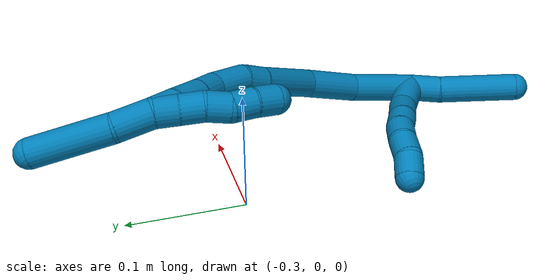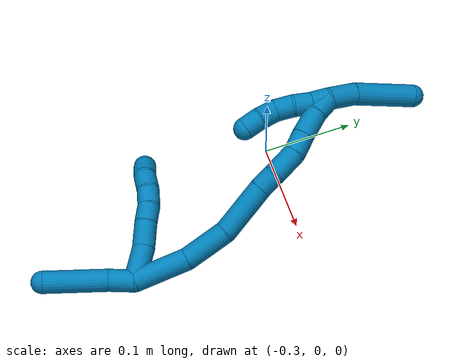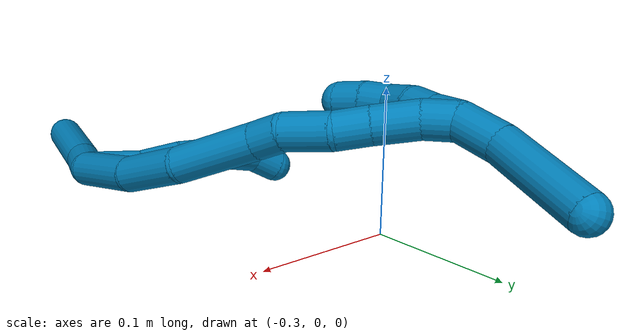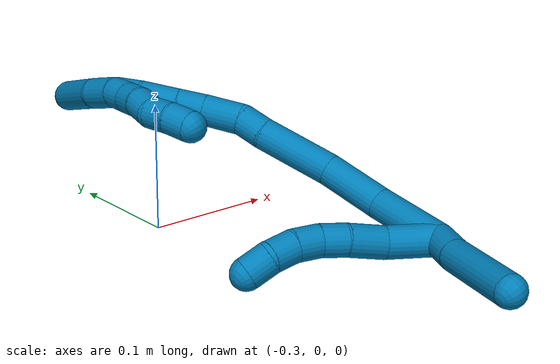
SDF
<sdf version="1.7">
 <world name="default">
  <model name="9">
   <static>0</static>
   <link name="9">
    <collision name="collision-cylinder-e_1_2_8">
     <pose>-0.000835 0.012218 0.015902 -0.655111 -0.041617 0.014143</pose>
     <geometry><cylinder><radius>0.0125</radius><length>0.040142</length></cylinder></geometry>
     <surface>
      <friction><ode><mu>1.16</mu><mu2>1.16</mu2><slip1>0</slip1><slip2>0</slip2></ode></friction>
      <contact><ode><kp>1e+06</kp><kd>1</kd><max_vel>0</max_vel><min_depth>0.001</min_depth></ode></contact>
     </surface>
    </collision>
    <visual name="visual-cylinder-e_1_2_8">
     <pose>-0.000835 0.012218 0.015902 -0.655111 -0.041617 0.014143</pose>
     <geometry><cylinder><radius>0.0125</radius><length>0.040142</length></cylinder></geometry>
     <material><ambient>0 0.490196 0.709804 1</ambient></material>
    </visual>
    <collision name="collision-cylinder-e_2_8_9">
     <pose>0.001024 0.033314 0.043217 -0.661144 0.184246 -0.063385</pose>
     <geometry><cylinder><radius>0.0125</radius><length>0.029416</length></cylinder></geometry>
     <surface>
      <friction><ode><mu>1.16</mu><mu2>1.16</mu2><slip1>0</slip1><slip2>0</slip2></ode></friction>
      <contact><ode><kp>1e+06</kp><kd>1</kd><max_vel>0</max_vel><min_depth>0.001</min_depth></ode></contact>
     </surface>
    </collision>
    <visual name="visual-cylinder-e_2_8_9">
     <pose>0.001024 0.033314 0.043217 -0.661144 0.184246 -0.063385</pose>
     <geometry><cylinder><radius>0.0125</radius><length>0.029416</length></cylinder></geometry>
     <material><ambient>0 0.490196 0.709804 1</ambient></material>
    </visual>
    <collision name="collision-cylinder-e_3_9_10">
     <pose>0.004186 0.04817 0.062646 -0.640743 0.046642 -0.015478</pose>
     <geometry><cylinder><radius>0.0125</radius><length>0.020022</length></cylinder></geometry>
     <surface>
      <friction><ode><mu>1.16</mu><mu2>1.16</mu2><slip1>0</slip1><slip2>0</slip2></ode></friction>
      <contact><ode><kp>1e+06</kp><kd>1</kd><max_vel>0</max_vel><min_depth>0.001</min_depth></ode></contact>
     </surface>
    </collision>
    <visual name="visual-cylinder-e_3_9_10">
     <pose>0.004186 0.04817 0.062646 -0.640743 0.046642 -0.015478</pose>
     <geometry><cylinder><radius>0.0125</radius><length>0.020022</length></cylinder></geometry>
     <material><ambient>0 0.490196 0.709804 1</ambient></material>
    </visual>
    <collision name="collision-cylinder-e_4_10_11">
     <pose>0.005762 0.058209 0.079808 -0.41794 0.110422 -0.02344</pose>
     <geometry><cylinder><radius>0.0125</radius><length>0.020135</length></cylinder></geometry>
     <surface>
      <friction><ode><mu>1.16</mu><mu2>1.16</mu2><slip1>0</slip1><slip2>0</slip2></ode></friction>
      <contact><ode><kp>1e+06</kp><kd>1</kd><max_vel>0</max_vel><min_depth>0.001</min_depth></ode></contact>
     </surface>
    </collision>
    <visual name="visual-cylinder-e_4_10_11">
     <pose>0.005762 0.058209 0.079808 -0.41794 0.110422 -0.02344</pose>
     <geometry><cylinder><radius>0.0125</radius><length>0.020135</length></cylinder></geometry>
     <material><ambient>0 0.490196 0.709804 1</ambient></material>
    </visual>
    <collision name="collision-cylinder-e_5_11_12">
     <pose>0.007376 0.064192 0.098865 -0.191435 0.049886 -0.004791</pose>
     <geometry><cylinder><radius>0.0125</radius><length>0.020219</length></cylinder></geometry>
     <surface>
      <friction><ode><mu>1.16</mu><mu2>1.16</mu2><slip1>0</slip1><slip2>0</slip2></ode></friction>
      <contact><ode><kp>1e+06</kp><kd>1</kd><max_vel>0</max_vel><min_depth>0.001</min_depth></ode></contact>
     </surface>
    </collision>
    <visual name="visual-cylinder-e_5_11_12">
     <pose>0.007376 0.064192 0.098865 -0.191435 0.049886 -0.004791</pose>
     <geometry><cylinder><radius>0.0125</radius><length>0.020219</length></cylinder></geometry>
     <material><ambient>0 0.490196 0.709804 1</ambient></material>
    </visual>
    <collision name="collision-cylinder-e_6_12_6">
     <pose>0.005241 0.06746 0.118363 -0.139618 -0.266155 0.01872</pose>
     <geometry><cylinder><radius>0.0125</radius><length>0.020065</length></cylinder></geometry>
     <surface>
      <friction><ode><mu>1.16</mu><mu2>1.16</mu2><slip1>0</slip1><slip2>0</slip2></ode></friction>
      <contact><ode><kp>1e+06</kp><kd>1</kd><max_vel>0</max_vel><min_depth>0.001</min_depth></ode></contact>
     </surface>
    </collision>
    <visual name="visual-cylinder-e_6_12_6">
     <pose>0.005241 0.06746 0.118363 -0.139618 -0.266155 0.01872</pose>
     <geometry><cylinder><radius>0.0125</radius><length>0.020065</length></cylinder></geometry>
     <material><ambient>0 0.490196 0.709804 1</ambient></material>
    </visual>
    <collision name="collision-cylinder-e_1_2_13">
     <pose>0.008677 -0.010007 0.005094 1.09996 0.657862 0.41257</pose>
     <geometry><cylinder><radius>0.0125</radius><length>0.028381</length></cylinder></geometry>
     <surface>
      <friction><ode><mu>1.16</mu><mu2>1.16</mu2><slip1>0</slip1><slip2>0</slip2></ode></friction>
      <contact><ode><kp>1e+06</kp><kd>1</kd><max_vel>0</max_vel><min_depth>0.001</min_depth></ode></contact>
     </surface>
    </collision>
    <visual name="visual-cylinder-e_1_2_13">
     <pose>0.008677 -0.010007 0.005094 1.09996 0.657862 0.41257</pose>
     <geometry><cylinder><radius>0.0125</radius><length>0.028381</length></cylinder></geometry>
     <material><ambient>0 0.490196 0.709804 1</ambient></material>
    </visual>
    <collision name="collision-cylinder-e_2_13_5">
     <pose>0.04071 -0.04564 0.019137 1.2348 0.710559 0.515145</pose>
     <geometry><cylinder><radius>0.0125</radius><length>0.071619</length></cylinder></geometry>
     <surface>
      <friction><ode><mu>1.16</mu><mu2>1.16</mu2><slip1>0</slip1><slip2>0</slip2></ode></friction>
      <contact><ode><kp>1e+06</kp><kd>1</kd><max_vel>0</max_vel><min_depth>0.001</min_depth></ode></contact>
     </surface>
    </collision>
    <visual name="visual-cylinder-e_2_13_5">
     <pose>0.04071 -0.04564 0.019137 1.2348 0.710559 0.515145</pose>
     <geometry><cylinder><radius>0.0125</radius><length>0.071619</length></cylinder></geometry>
     <material><ambient>0 0.490196 0.709804 1</ambient></material>
    </visual>
    <collision name="collision-cylinder-e_1_2_14">
     <pose>-0.012848 0.027734 -0.001302 -1.61772 -0.433387 0.453522</pose>
     <geometry><cylinder><radius>0.0125</radius><length>0.061187</length></cylinder></geometry>
     <surface>
      <friction><ode><mu>1.16</mu><mu2>1.16</mu2><slip1>0</slip1><slip2>0</slip2></ode></friction>
      <contact><ode><kp>1e+06</kp><kd>1</kd><max_vel>0</max_vel><min_depth>0.001</min_depth></ode></contact>
     </surface>
    </collision>
    <visual name="visual-cylinder-e_1_2_14">
     <pose>-0.012848 0.027734 -0.001302 -1.61772 -0.433387 0.453522</pose>
     <geometry><cylinder><radius>0.0125</radius><length>0.061187</length></cylinder></geometry>
     <material><ambient>0 0.490196 0.709804 1</ambient></material>
    </visual>
    <collision name="collision-cylinder-e_2_14_15">
     <pose>-0.031313 0.080306 -0.001098 -1.51022 -0.22206 0.209098</pose>
     <geometry><cylinder><radius>0.0125</radius><length>0.051019</length></cylinder></geometry>
     <surface>
      <friction><ode><mu>1.16</mu><mu2>1.16</mu2><slip1>0</slip1><slip2>0</slip2></ode></friction>
      <contact><ode><kp>1e+06</kp><kd>1</kd><max_vel>0</max_vel><min_depth>0.001</min_depth></ode></contact>
     </surface>
    </collision>
    <visual name="visual-cylinder-e_2_14_15">
     <pose>-0.031313 0.080306 -0.001098 -1.51022 -0.22206 0.209098</pose>
     <geometry><cylinder><radius>0.0125</radius><length>0.051019</length></cylinder></geometry>
     <material><ambient>0 0.490196 0.709804 1</ambient></material>
    </visual>
    <collision name="collision-cylinder-e_3_15_16">
     <pose>-0.038091 0.133962 0.008389 -1.30063 -0.038739 0.02947</pose>
     <geometry><cylinder><radius>0.0125</radius><length>0.059851</length></cylinder></geometry>
     <surface>
      <friction><ode><mu>1.16</mu><mu2>1.16</mu2><slip1>0</slip1><slip2>0</slip2></ode></friction>
      <contact><ode><kp>1e+06</kp><kd>1</kd><max_vel>0</max_vel><min_depth>0.001</min_depth></ode></contact>
     </surface>
    </collision>
    <visual name="visual-cylinder-e_3_15_16">
     <pose>-0.038091 0.133962 0.008389 -1.30063 -0.038739 0.02947</pose>
     <geometry><cylinder><radius>0.0125</radius><length>0.059851</length></cylinder></geometry>
     <material><ambient>0 0.490196 0.709804 1</ambient></material>
    </visual>
    <collision name="collision-cylinder-e_4_16_17">
     <pose>-0.040081 0.173024 0.017984 -1.41456 -0.080051 0.068439</pose>
     <geometry><cylinder><radius>0.0125</radius><length>0.020805</length></cylinder></geometry>
     <surface>
      <friction><ode><mu>1.16</mu><mu2>1.16</mu2><slip1>0</slip1><slip2>0</slip2></ode></friction>
      <contact><ode><kp>1e+06</kp><kd>1</kd><max_vel>0</max_vel><min_depth>0.001</min_depth></ode></contact>
     </surface>
    </collision>
    <visual name="visual-cylinder-e_4_16_17">
     <pose>-0.040081 0.173024 0.017984 -1.41456 -0.080051 0.068439</pose>
     <geometry><cylinder><radius>0.0125</radius><length>0.020805</length></cylinder></geometry>
     <material><ambient>0 0.490196 0.709804 1</ambient></material>
    </visual>
    <collision name="collision-cylinder-e_5_17_18">
     <pose>-0.045158 0.197741 0.025939 -1.15784 -0.262408 0.172082</pose>
     <geometry><cylinder><radius>0.0125</radius><length>0.032726</length></cylinder></geometry>
     <surface>
      <friction><ode><mu>1.16</mu><mu2>1.16</mu2><slip1>0</slip1><slip2>0</slip2></ode></friction>
      <contact><ode><kp>1e+06</kp><kd>1</kd><max_vel>0</max_vel><min_depth>0.001</min_depth></ode></contact>
     </surface>
    </collision>
    <visual name="visual-cylinder-e_5_17_18">
     <pose>-0.045158 0.197741 0.025939 -1.15784 -0.262408 0.172082</pose>
     <geometry><cylinder><radius>0.0125</radius><length>0.032726</length></cylinder></geometry>
     <material><ambient>0 0.490196 0.709804 1</ambient></material>
    </visual>
    <collision name="collision-cylinder-e_6_18_19">
     <pose>-0.049855 0.221522 0.038841 -0.956786 -0.039719 0.020599</pose>
     <geometry><cylinder><radius>0.0125</radius><length>0.02279</length></cylinder></geometry>
     <surface>
      <friction><ode><mu>1.16</mu><mu2>1.16</mu2><slip1>0</slip1><slip2>0</slip2></ode></friction>
      <contact><ode><kp>1e+06</kp><kd>1</kd><max_vel>0</max_vel><min_depth>0.001</min_depth></ode></contact>
     </surface>
    </collision>
    <visual name="visual-cylinder-e_6_18_19">
     <pose>-0.049855 0.221522 0.038841 -0.956786 -0.039719 0.020599</pose>
     <geometry><cylinder><radius>0.0125</radius><length>0.02279</length></cylinder></geometry>
     <material><ambient>0 0.490196 0.709804 1</ambient></material>
    </visual>
    <collision name="collision-cylinder-e_7_19_20">
     <pose>-0.051695 0.243345 0.053441 -0.999845 -0.093012 0.050829</pose>
     <geometry><cylinder><radius>0.0125</radius><length>0.029882</length></cylinder></geometry>
     <surface>
      <friction><ode><mu>1.16</mu><mu2>1.16</mu2><slip1>0</slip1><slip2>0</slip2></ode></friction>
      <contact><ode><kp>1e+06</kp><kd>1</kd><max_vel>0</max_vel><min_depth>0.001</min_depth></ode></contact>
     </surface>
    </collision>
    <visual name="visual-cylinder-e_7_19_20">
     <pose>-0.051695 0.243345 0.053441 -0.999845 -0.093012 0.050829</pose>
     <geometry><cylinder><radius>0.0125</radius><length>0.029882</length></cylinder></geometry>
     <material><ambient>0 0.490196 0.709804 1</ambient></material>
    </visual>
    <collision name="collision-cylinder-e_8_20_1">
     <pose>-0.056339 0.264941 0.066493 -1.06632 -0.304199 0.180434</pose>
     <geometry><cylinder><radius>0.0125</radius><length>0.02174</length></cylinder></geometry>
     <surface>
      <friction><ode><mu>1.16</mu><mu2>1.16</mu2><slip1>0</slip1><slip2>0</slip2></ode></friction>
      <contact><ode><kp>1e+06</kp><kd>1</kd><max_vel>0</max_vel><min_depth>0.001</min_depth></ode></contact>
     </surface>
    </collision>
    <visual name="visual-cylinder-e_8_20_1">
     <pose>-0.056339 0.264941 0.066493 -1.06632 -0.304199 0.180434</pose>
     <geometry><cylinder><radius>0.0125</radius><length>0.02174</length></cylinder></geometry>
     <material><ambient>0 0.490196 0.709804 1</ambient></material>
    </visual>
    <collision name="collision-cylinder-e_1_1_21">
     <pose>-0.053798 0.265881 0.071912 1.52092 0.618319 0.589979</pose>
     <geometry><cylinder><radius>0.0125</radius><length>0.02</length></cylinder></geometry>
     <surface>
      <friction><ode><mu>1.16</mu><mu2>1.16</mu2><slip1>0</slip1><slip2>0</slip2></ode></friction>
      <contact><ode><kp>1e+06</kp><kd>1</kd><max_vel>0</max_vel><min_depth>0.001</min_depth></ode></contact>
     </surface>
    </collision>
    <visual name="visual-cylinder-e_1_1_21">
     <pose>-0.053798 0.265881 0.071912 1.52092 0.618319 0.589979</pose>
     <geometry><cylinder><radius>0.0125</radius><length>0.02</length></cylinder></geometry>
     <material><ambient>0 0.490196 0.709804 1</ambient></material>
    </visual>
    <collision name="collision-cylinder-e_2_21_22">
     <pose>-0.041478 0.250241 0.073397 1.42811 0.710674 0.622282</pose>
     <geometry><cylinder><radius>0.0125</radius><length>0.02</length></cylinder></geometry>
     <surface>
      <friction><ode><mu>1.16</mu><mu2>1.16</mu2><slip1>0</slip1><slip2>0</slip2></ode></friction>
      <contact><ode><kp>1e+06</kp><kd>1</kd><max_vel>0</max_vel><min_depth>0.001</min_depth></ode></contact>
     </surface>
    </collision>
    <visual name="visual-cylinder-e_2_21_22">
     <pose>-0.041478 0.250241 0.073397 1.42811 0.710674 0.622282</pose>
     <geometry><cylinder><radius>0.0125</radius><length>0.02</length></cylinder></geometry>
     <material><ambient>0 0.490196 0.709804 1</ambient></material>
    </visual>
    <collision name="collision-cylinder-e_3_22_23">
     <pose>-0.0302 0.234118 0.076231 1.36982 0.495439 0.407435</pose>
     <geometry><cylinder><radius>0.0125</radius><length>0.02</length></cylinder></geometry>
     <surface>
      <friction><ode><mu>1.16</mu><mu2>1.16</mu2><slip1>0</slip1><slip2>0</slip2></ode></friction>
      <contact><ode><kp>1e+06</kp><kd>1</kd><max_vel>0</max_vel><min_depth>0.001</min_depth></ode></contact>
     </surface>
    </collision>
    <visual name="visual-cylinder-e_3_22_23">
     <pose>-0.0302 0.234118 0.076231 1.36982 0.495439 0.407435</pose>
     <geometry><cylinder><radius>0.0125</radius><length>0.02</length></cylinder></geometry>
     <material><ambient>0 0.490196 0.709804 1</ambient></material>
    </visual>
    <collision name="collision-cylinder-e_4_23_24">
     <pose>-0.020672 0.216867 0.076337 1.75972 0.497712 0.596312</pose>
     <geometry><cylinder><radius>0.0125</radius><length>0.02</length></cylinder></geometry>
     <surface>
      <friction><ode><mu>1.16</mu><mu2>1.16</mu2><slip1>0</slip1><slip2>0</slip2></ode></friction>
      <contact><ode><kp>1e+06</kp><kd>1</kd><max_vel>0</max_vel><min_depth>0.001</min_depth></ode></contact>
     </surface>
    </collision>
    <visual name="visual-cylinder-e_4_23_24">
     <pose>-0.020672 0.216867 0.076337 1.75972 0.497712 0.596312</pose>
     <geometry><cylinder><radius>0.0125</radius><length>0.02</length></cylinder></geometry>
     <material><ambient>0 0.490196 0.709804 1</ambient></material>
    </visual>
    <collision name="collision-cylinder-e_5_24_4">
     <pose>-0.012391 0.199035 0.072945 1.75786 0.358334 0.430438</pose>
     <geometry><cylinder><radius>0.0125</radius><length>0.02</length></cylinder></geometry>
     <surface>
      <friction><ode><mu>1.16</mu><mu2>1.16</mu2><slip1>0</slip1><slip2>0</slip2></ode></friction>
      <contact><ode><kp>1e+06</kp><kd>1</kd><max_vel>0</max_vel><min_depth>0.001</min_depth></ode></contact>
     </surface>
    </collision>
    <visual name="visual-cylinder-e_5_24_4">
     <pose>-0.012391 0.199035 0.072945 1.75786 0.358334 0.430438</pose>
     <geometry><cylinder><radius>0.0125</radius><length>0.02</length></cylinder></geometry>
     <material><ambient>0 0.490196 0.709804 1</ambient></material>
    </visual>
    <collision name="collision-cylinder-e_1_1_25">
     <pose>-0.070991 0.284705 0.073112 -1.42159 -0.81202 0.708939</pose>
     <geometry><cylinder><radius>0.0125</radius><length>0.03141</length></cylinder></geometry>
     <surface>
      <friction><ode><mu>1.16</mu><mu2>1.16</mu2><slip1>0</slip1><slip2>0</slip2></ode></friction>
      <contact><ode><kp>1e+06</kp><kd>1</kd><max_vel>0</max_vel><min_depth>0.001</min_depth></ode></contact>
     </surface>
    </collision>
    <visual name="visual-cylinder-e_1_1_25">
     <pose>-0.070991 0.284705 0.073112 -1.42159 -0.81202 0.708939</pose>
     <geometry><cylinder><radius>0.0125</radius><length>0.03141</length></cylinder></geometry>
     <material><ambient>0 0.490196 0.709804 1</ambient></material>
    </visual>
    <collision name="collision-cylinder-e_2_25_3">
     <pose>-0.109953 0.315615 0.072019 -1.7035 -0.933584 1.04468</pose>
     <geometry><cylinder><radius>0.0125</radius><length>0.06859</length></cylinder></geometry>
     <surface>
      <friction><ode><mu>1.16</mu><mu2>1.16</mu2><slip1>0</slip1><slip2>0</slip2></ode></friction>
      <contact><ode><kp>1e+06</kp><kd>1</kd><max_vel>0</max_vel><min_depth>0.001</min_depth></ode></contact>
     </surface>
    </collision>
    <visual name="visual-cylinder-e_2_25_3">
     <pose>-0.109953 0.315615 0.072019 -1.7035 -0.933584 1.04468</pose>
     <geometry><cylinder><radius>0.0125</radius><length>0.06859</length></cylinder></geometry>
     <material><ambient>0 0.490196 0.709804 1</ambient></material>
    </visual>
    <collision name="collision-sphere-3">
     <pose>-0.137518 0.33584 0.069319 0 -0 0</pose>
     <geometry><sphere><radius>0.0125</radius></sphere></geometry>
     <surface>
      <friction><ode><mu>1.16</mu><mu2>1.16</mu2><slip1>0</slip1><slip2>0</slip2></ode></friction>
      <contact><ode><kp>1e+06</kp><kd>1</kd><max_vel>0</max_vel><min_depth>0.001</min_depth></ode></contact>
     </surface>
    </collision>
    <visual name="visual-sphere-3">
     <pose>-0.137518 0.33584 0.069319 0 -0 0</pose>
     <geometry><sphere><radius>0.0125</radius></sphere></geometry>
     <material><ambient>0 0.490196 0.709804 1</ambient></material>
    </visual>
    <collision name="collision-sphere-25">
     <pose>-0.082388 0.295391 0.074719 0 -0 0</pose>
     <geometry><sphere><radius>0.0125</radius></sphere></geometry>
     <surface>
      <friction><ode><mu>1.16</mu><mu2>1.16</mu2><slip1>0</slip1><slip2>0</slip2></ode></friction>
      <contact><ode><kp>1e+06</kp><kd>1</kd><max_vel>0</max_vel><min_depth>0.001</min_depth></ode></contact>
     </surface>
    </collision>
    <visual name="visual-sphere-25">
     <pose>-0.082388 0.295391 0.074719 0 -0 0</pose>
     <geometry><sphere><radius>0.0125</radius></sphere></geometry>
     <material><ambient>0 0.490196 0.709804 1</ambient></material>
    </visual>
    <collision name="collision-sphere-4">
     <pose>-0.008883 0.189834 0.071203 0 -0 0</pose>
     <geometry><sphere><radius>0.0125</radius></sphere></geometry>
     <surface>
      <friction><ode><mu>1.16</mu><mu2>1.16</mu2><slip1>0</slip1><slip2>0</slip2></ode></friction>
      <contact><ode><kp>1e+06</kp><kd>1</kd><max_vel>0</max_vel><min_depth>0.001</min_depth></ode></contact>
     </surface>
    </collision>
    <visual name="visual-sphere-4">
     <pose>-0.008883 0.189834 0.071203 0 -0 0</pose>
     <geometry><sphere><radius>0.0125</radius></sphere></geometry>
     <material><ambient>0 0.490196 0.709804 1</ambient></material>
    </visual>
    <collision name="collision-sphere-24">
     <pose>-0.015898 0.208237 0.074687 0 -0 0</pose>
     <geometry><sphere><radius>0.0125</radius></sphere></geometry>
     <surface>
      <friction><ode><mu>1.16</mu><mu2>1.16</mu2><slip1>0</slip1><slip2>0</slip2></ode></friction>
      <contact><ode><kp>1e+06</kp><kd>1</kd><max_vel>0</max_vel><min_depth>0.001</min_depth></ode></contact>
     </surface>
    </collision>
    <visual name="visual-sphere-24">
     <pose>-0.015898 0.208237 0.074687 0 -0 0</pose>
     <geometry><sphere><radius>0.0125</radius></sphere></geometry>
     <material><ambient>0 0.490196 0.709804 1</ambient></material>
    </visual>
    <collision name="collision-sphere-23">
     <pose>-0.025446 0.225497 0.077987 0 -0 0</pose>
     <geometry><sphere><radius>0.0125</radius></sphere></geometry>
     <surface>
      <friction><ode><mu>1.16</mu><mu2>1.16</mu2><slip1>0</slip1><slip2>0</slip2></ode></friction>
      <contact><ode><kp>1e+06</kp><kd>1</kd><max_vel>0</max_vel><min_depth>0.001</min_depth></ode></contact>
     </surface>
    </collision>
    <visual name="visual-sphere-23">
     <pose>-0.025446 0.225497 0.077987 0 -0 0</pose>
     <geometry><sphere><radius>0.0125</radius></sphere></geometry>
     <material><ambient>0 0.490196 0.709804 1</ambient></material>
    </visual>
    <collision name="collision-sphere-22">
     <pose>-0.034954 0.242738 0.074474 0 -0 0</pose>
     <geometry><sphere><radius>0.0125</radius></sphere></geometry>
     <surface>
      <friction><ode><mu>1.16</mu><mu2>1.16</mu2><slip1>0</slip1><slip2>0</slip2></ode></friction>
      <contact><ode><kp>1e+06</kp><kd>1</kd><max_vel>0</max_vel><min_depth>0.001</min_depth></ode></contact>
     </surface>
    </collision>
    <visual name="visual-sphere-22">
     <pose>-0.034954 0.242738 0.074474 0 -0 0</pose>
     <geometry><sphere><radius>0.0125</radius></sphere></geometry>
     <material><ambient>0 0.490196 0.709804 1</ambient></material>
    </visual>
    <collision name="collision-sphere-21">
     <pose>-0.048001 0.257743 0.072319 0 -0 0</pose>
     <geometry><sphere><radius>0.0125</radius></sphere></geometry>
     <surface>
      <friction><ode><mu>1.16</mu><mu2>1.16</mu2><slip1>0</slip1><slip2>0</slip2></ode></friction>
      <contact><ode><kp>1e+06</kp><kd>1</kd><max_vel>0</max_vel><min_depth>0.001</min_depth></ode></contact>
     </surface>
    </collision>
    <visual name="visual-sphere-21">
     <pose>-0.048001 0.257743 0.072319 0 -0 0</pose>
     <geometry><sphere><radius>0.0125</radius></sphere></geometry>
     <material><ambient>0 0.490196 0.709804 1</ambient></material>
    </visual>
    <collision name="collision-sphere-1">
     <pose>-0.059595 0.27402 0.071506 0 -0 0</pose>
     <geometry><sphere><radius>0.0125</radius></sphere></geometry>
     <surface>
      <friction><ode><mu>1.16</mu><mu2>1.16</mu2><slip1>0</slip1><slip2>0</slip2></ode></friction>
      <contact><ode><kp>1e+06</kp><kd>1</kd><max_vel>0</max_vel><min_depth>0.001</min_depth></ode></contact>
     </surface>
    </collision>
    <visual name="visual-sphere-1">
     <pose>-0.059595 0.27402 0.071506 0 -0 0</pose>
     <geometry><sphere><radius>0.0125</radius></sphere></geometry>
     <material><ambient>0 0.490196 0.709804 1</ambient></material>
    </visual>
    <collision name="collision-sphere-12">
     <pose>0.00788 0.066113 0.108778 0 -0 0</pose>
     <geometry><sphere><radius>0.0125</radius></sphere></geometry>
     <surface>
      <friction><ode><mu>1.16</mu><mu2>1.16</mu2><slip1>0</slip1><slip2>0</slip2></ode></friction>
      <contact><ode><kp>1e+06</kp><kd>1</kd><max_vel>0</max_vel><min_depth>0.001</min_depth></ode></contact>
     </surface>
    </collision>
    <visual name="visual-sphere-12">
     <pose>0.00788 0.066113 0.108778 0 -0 0</pose>
     <geometry><sphere><radius>0.0125</radius></sphere></geometry>
     <material><ambient>0 0.490196 0.709804 1</ambient></material>
    </visual>
    <collision name="collision-sphere-11">
     <pose>0.006871 0.06227 0.088953 0 -0 0</pose>
     <geometry><sphere><radius>0.0125</radius></sphere></geometry>
     <surface>
      <friction><ode><mu>1.16</mu><mu2>1.16</mu2><slip1>0</slip1><slip2>0</slip2></ode></friction>
      <contact><ode><kp>1e+06</kp><kd>1</kd><max_vel>0</max_vel><min_depth>0.001</min_depth></ode></contact>
     </surface>
    </collision>
    <visual name="visual-sphere-11">
     <pose>0.006871 0.06227 0.088953 0 -0 0</pose>
     <geometry><sphere><radius>0.0125</radius></sphere></geometry>
     <material><ambient>0 0.490196 0.709804 1</ambient></material>
    </visual>
    <collision name="collision-sphere-10">
     <pose>0.004653 0.054148 0.070663 0 -0 0</pose>
     <geometry><sphere><radius>0.0125</radius></sphere></geometry>
     <surface>
      <friction><ode><mu>1.16</mu><mu2>1.16</mu2><slip1>0</slip1><slip2>0</slip2></ode></friction>
      <contact><ode><kp>1e+06</kp><kd>1</kd><max_vel>0</max_vel><min_depth>0.001</min_depth></ode></contact>
     </surface>
    </collision>
    <visual name="visual-sphere-10">
     <pose>0.004653 0.054148 0.070663 0 -0 0</pose>
     <geometry><sphere><radius>0.0125</radius></sphere></geometry>
     <material><ambient>0 0.490196 0.709804 1</ambient></material>
    </visual>
    <collision name="collision-sphere-9">
     <pose>0.003719 0.042192 0.054629 0 -0 0</pose>
     <geometry><sphere><radius>0.0125</radius></sphere></geometry>
     <surface>
      <friction><ode><mu>1.16</mu><mu2>1.16</mu2><slip1>0</slip1><slip2>0</slip2></ode></friction>
      <contact><ode><kp>1e+06</kp><kd>1</kd><max_vel>0</max_vel><min_depth>0.001</min_depth></ode></contact>
     </surface>
    </collision>
    <visual name="visual-sphere-9">
     <pose>0.003719 0.042192 0.054629 0 -0 0</pose>
     <geometry><sphere><radius>0.0125</radius></sphere></geometry>
     <material><ambient>0 0.490196 0.709804 1</ambient></material>
    </visual>
    <collision name="collision-sphere-2">
     <geometry><sphere><radius>0.0125</radius></sphere></geometry>
     <surface>
      <friction><ode><mu>1.16</mu><mu2>1.16</mu2><slip1>0</slip1><slip2>0</slip2></ode></friction>
      <contact><ode><kp>1e+06</kp><kd>1</kd><max_vel>0</max_vel><min_depth>0.001</min_depth></ode></contact>
     </surface>
    </collision>
    <visual name="visual-sphere-2">
     <geometry><sphere><radius>0.0125</radius></sphere></geometry>
     <material><ambient>0 0.490196 0.709804 1</ambient></material>
    </visual>
    <collision name="collision-sphere-19">
     <pose>-0.050308 0.230828 0.045401 0 -0 0</pose>
     <geometry><sphere><radius>0.0125</radius></sphere></geometry>
     <surface>
      <friction><ode><mu>1.16</mu><mu2>1.16</mu2><slip1>0</slip1><slip2>0</slip2></ode></friction>
      <contact><ode><kp>1e+06</kp><kd>1</kd><max_vel>0</max_vel><min_depth>0.001</min_depth></ode></contact>
     </surface>
    </collision>
    <visual name="visual-sphere-19">
     <pose>-0.050308 0.230828 0.045401 0 -0 0</pose>
     <geometry><sphere><radius>0.0125</radius></sphere></geometry>
     <material><ambient>0 0.490196 0.709804 1</ambient></material>
    </visual>
    <collision name="collision-sphere-8">
     <pose>-0.00167 0.024435 0.031805 0 -0 0</pose>
     <geometry><sphere><radius>0.0125</radius></sphere></geometry>
     <surface>
      <friction><ode><mu>1.16</mu><mu2>1.16</mu2><slip1>0</slip1><slip2>0</slip2></ode></friction>
      <contact><ode><kp>1e+06</kp><kd>1</kd><max_vel>0</max_vel><min_depth>0.001</min_depth></ode></contact>
     </surface>
    </collision>
    <visual name="visual-sphere-8">
     <pose>-0.00167 0.024435 0.031805 0 -0 0</pose>
     <geometry><sphere><radius>0.0125</radius></sphere></geometry>
     <material><ambient>0 0.490196 0.709804 1</ambient></material>
    </visual>
    <collision name="collision-sphere-6">
     <pose>0.002602 0.068807 0.127948 0 -0 0</pose>
     <geometry><sphere><radius>0.0125</radius></sphere></geometry>
     <surface>
      <friction><ode><mu>1.16</mu><mu2>1.16</mu2><slip1>0</slip1><slip2>0</slip2></ode></friction>
      <contact><ode><kp>1e+06</kp><kd>1</kd><max_vel>0</max_vel><min_depth>0.001</min_depth></ode></contact>
     </surface>
    </collision>
    <visual name="visual-sphere-6">
     <pose>0.002602 0.068807 0.127948 0 -0 0</pose>
     <geometry><sphere><radius>0.0125</radius></sphere></geometry>
     <material><ambient>0 0.490196 0.709804 1</ambient></material>
    </visual>
    <collision name="collision-sphere-13">
     <pose>0.017353 -0.020014 0.010188 0 -0 0</pose>
     <geometry><sphere><radius>0.0125</radius></sphere></geometry>
     <surface>
      <friction><ode><mu>1.16</mu><mu2>1.16</mu2><slip1>0</slip1><slip2>0</slip2></ode></friction>
      <contact><ode><kp>1e+06</kp><kd>1</kd><max_vel>0</max_vel><min_depth>0.001</min_depth></ode></contact>
     </surface>
    </collision>
    <visual name="visual-sphere-13">
     <pose>0.017353 -0.020014 0.010188 0 -0 0</pose>
     <geometry><sphere><radius>0.0125</radius></sphere></geometry>
     <material><ambient>0 0.490196 0.709804 1</ambient></material>
    </visual>
    <collision name="collision-sphere-5">
     <pose>0.064067 -0.071266 0.028086 0 -0 0</pose>
     <geometry><sphere><radius>0.0125</radius></sphere></geometry>
     <surface>
      <friction><ode><mu>1.16</mu><mu2>1.16</mu2><slip1>0</slip1><slip2>0</slip2></ode></friction>
      <contact><ode><kp>1e+06</kp><kd>1</kd><max_vel>0</max_vel><min_depth>0.001</min_depth></ode></contact>
     </surface>
    </collision>
    <visual name="visual-sphere-5">
     <pose>0.064067 -0.071266 0.028086 0 -0 0</pose>
     <geometry><sphere><radius>0.0125</radius></sphere></geometry>
     <material><ambient>0 0.490196 0.709804 1</ambient></material>
    </visual>
    <collision name="collision-sphere-14">
     <pose>-0.025695 0.055469 -0.002604 0 -0 0</pose>
     <geometry><sphere><radius>0.0125</radius></sphere></geometry>
     <surface>
      <friction><ode><mu>1.16</mu><mu2>1.16</mu2><slip1>0</slip1><slip2>0</slip2></ode></friction>
      <contact><ode><kp>1e+06</kp><kd>1</kd><max_vel>0</max_vel><min_depth>0.001</min_depth></ode></contact>
     </surface>
    </collision>
    <visual name="visual-sphere-14">
     <pose>-0.025695 0.055469 -0.002604 0 -0 0</pose>
     <geometry><sphere><radius>0.0125</radius></sphere></geometry>
     <material><ambient>0 0.490196 0.709804 1</ambient></material>
    </visual>
    <collision name="collision-sphere-15">
     <pose>-0.036932 0.105144 0.000408 0 -0 0</pose>
     <geometry><sphere><radius>0.0125</radius></sphere></geometry>
     <surface>
      <friction><ode><mu>1.16</mu><mu2>1.16</mu2><slip1>0</slip1><slip2>0</slip2></ode></friction>
      <contact><ode><kp>1e+06</kp><kd>1</kd><max_vel>0</max_vel><min_depth>0.001</min_depth></ode></contact>
     </surface>
    </collision>
    <visual name="visual-sphere-15">
     <pose>-0.036932 0.105144 0.000408 0 -0 0</pose>
     <geometry><sphere><radius>0.0125</radius></sphere></geometry>
     <material><ambient>0 0.490196 0.709804 1</ambient></material>
    </visual>
    <collision name="collision-sphere-16">
     <pose>-0.03925 0.162781 0.01637 0 -0 0</pose>
     <geometry><sphere><radius>0.0125</radius></sphere></geometry>
     <surface>
      <friction><ode><mu>1.16</mu><mu2>1.16</mu2><slip1>0</slip1><slip2>0</slip2></ode></friction>
      <contact><ode><kp>1e+06</kp><kd>1</kd><max_vel>0</max_vel><min_depth>0.001</min_depth></ode></contact>
     </surface>
    </collision>
    <visual name="visual-sphere-16">
     <pose>-0.03925 0.162781 0.01637 0 -0 0</pose>
     <geometry><sphere><radius>0.0125</radius></sphere></geometry>
     <material><ambient>0 0.490196 0.709804 1</ambient></material>
    </visual>
    <collision name="collision-sphere-17">
     <pose>-0.040913 0.183267 0.019597 0 -0 0</pose>
     <geometry><sphere><radius>0.0125</radius></sphere></geometry>
     <surface>
      <friction><ode><mu>1.16</mu><mu2>1.16</mu2><slip1>0</slip1><slip2>0</slip2></ode></friction>
      <contact><ode><kp>1e+06</kp><kd>1</kd><max_vel>0</max_vel><min_depth>0.001</min_depth></ode></contact>
     </surface>
    </collision>
    <visual name="visual-sphere-17">
     <pose>-0.040913 0.183267 0.019597 0 -0 0</pose>
     <geometry><sphere><radius>0.0125</radius></sphere></geometry>
     <material><ambient>0 0.490196 0.709804 1</ambient></material>
    </visual>
    <collision name="collision-sphere-18">
     <pose>-0.049403 0.212216 0.032281 0 -0 0</pose>
     <geometry><sphere><radius>0.0125</radius></sphere></geometry>
     <surface>
      <friction><ode><mu>1.16</mu><mu2>1.16</mu2><slip1>0</slip1><slip2>0</slip2></ode></friction>
      <contact><ode><kp>1e+06</kp><kd>1</kd><max_vel>0</max_vel><min_depth>0.001</min_depth></ode></contact>
     </surface>
    </collision>
    <visual name="visual-sphere-18">
     <pose>-0.049403 0.212216 0.032281 0 -0 0</pose>
     <geometry><sphere><radius>0.0125</radius></sphere></geometry>
     <material><ambient>0 0.490196 0.709804 1</ambient></material>
    </visual>
    <collision name="collision-sphere-20">
     <pose>-0.053083 0.255862 0.061481 0 -0 0</pose>
     <geometry><sphere><radius>0.0125</radius></sphere></geometry>
     <surface>
      <friction><ode><mu>1.16</mu><mu2>1.16</mu2><slip1>0</slip1><slip2>0</slip2></ode></friction>
      <contact><ode><kp>1e+06</kp><kd>1</kd><max_vel>0</max_vel><min_depth>0.001</min_depth></ode></contact>
     </surface>
    </collision>
    <visual name="visual-sphere-20">
     <pose>-0.053083 0.255862 0.061481 0 -0 0</pose>
     <geometry><sphere><radius>0.0125</radius></sphere></geometry>
     <material><ambient>0 0.490196 0.709804 1</ambient></material>
    </visual>
    <inertial>
     <pose>-0.026948 0.131443 0.041106 0 -0 0</pose>
     <mass>0.75</mass>
     <inertia>
      <ixx>0.000164</ixx>
      <ixy>0</ixy>
      <ixz>0</ixz>
      <iyy>0.000139</iyy>
      <iyz>0</iyz>
      <izz>-2.7e-05</izz>
     </inertia>
    </inertial>
   </link>
   <pose>-0.185742 -0.191784 0.021621 2.18285 -0.876196 -2.06614</pose>
  </model>
 </world>
</sdf>
